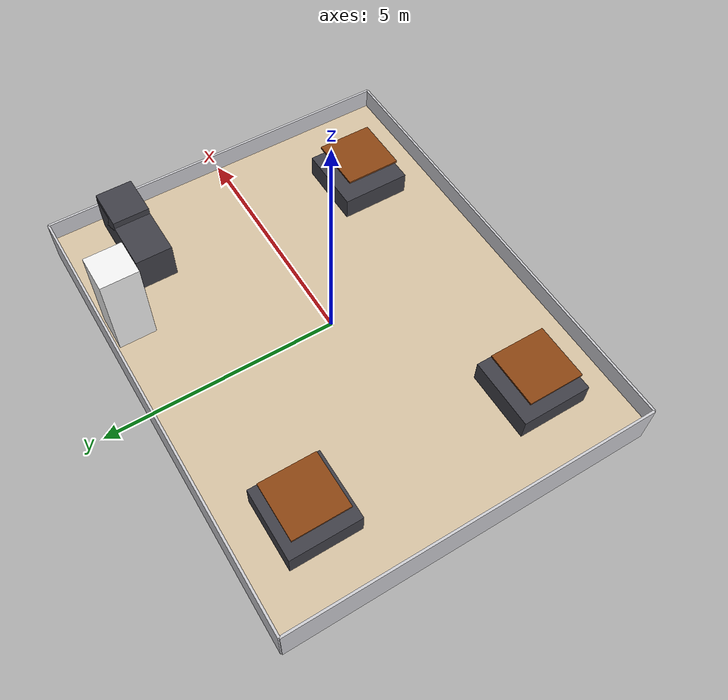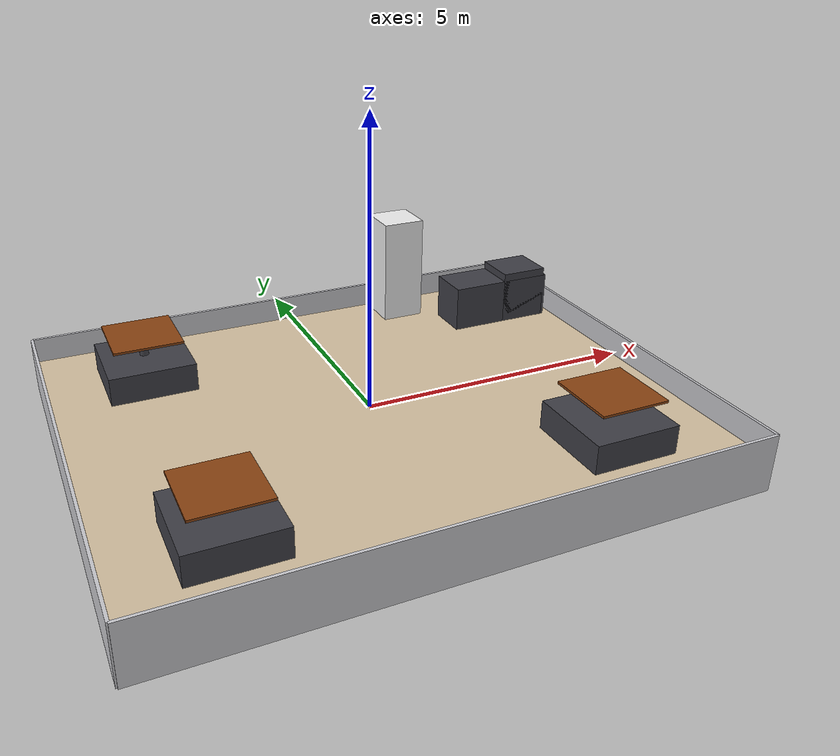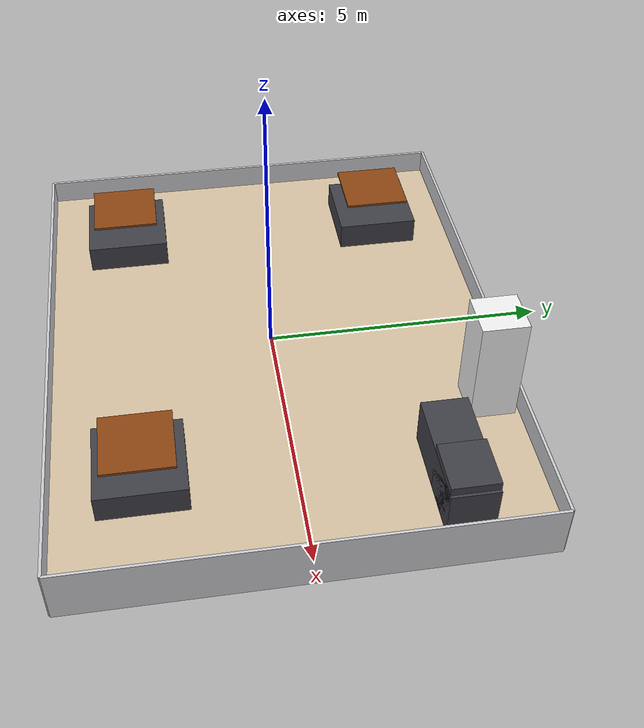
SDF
<sdf version="1.6">
  <world name="restaurant_world">

    <!-- Restaurant model -->
    <include>
      <uri>model://restaurant_env</uri>
    </include>

    <!-- Optional: add light so it’s not dark -->
    <scene>
      <ambient>0.4 0.4 0.4 1</ambient>
      <background>0.7 0.7 0.7 1</background>
      <shadows>1</shadows>
    </scene>

  </world>
</sdf>

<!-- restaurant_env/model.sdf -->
<sdf version="1.6">
  <model name="restaurant_env">
    <static>true</static>
    <link name="restaurant_env">

      <!-- Floor -->
      <collision name="floor_collision">
        <pose>0 0 -0.05 0 0 0</pose>
        <geometry>
          <box>
            <size>10 8 0.1</size>
          </box>
        </geometry>
      </collision>
      <visual name="floor_visual">
        <pose>0 0 -0.05 0 0 0</pose>
        <geometry>
          <box>
            <size>10 8 0.1</size>
          </box>
        </geometry>
        <material>
          <ambient>0.84 0.76 0.64 1</ambient>
          <diffuse>0.84 0.76 0.64 1</diffuse>
        </material>
      </visual>

      <!-- Walls -->
      <collision name="wall_north_collision">
        <pose>0 4 -0.05 0 0 0</pose>
        <geometry>
          <box><size>10 0.05 1</size></box>
        </geometry>
      </collision>
      <visual name="wall_north_visual">
        <pose>0 4 -0.05 0 0 0</pose>
        <geometry>
          <box><size>10 0.05 1</size></box>
        </geometry>
        <material><ambient>0.8 0.8 0.82 1</ambient><diffuse>0.8 0.8 0.82 1</diffuse></material>
      </visual>

      <collision name="wall_south_collision">
        <pose>0 -4 -0.05 0 0 0</pose>
        <geometry>
          <box><size>10 0.05 1</size></box>
        </geometry>
      </collision>
      <visual name="wall_south_visual">
        <pose>0 -4 -0.05 0 0 0</pose>
        <geometry>
          <box><size>10 0.05 1</size></box>
        </geometry>
        <material><ambient>0.8 0.8 0.82 1</ambient><diffuse>0.8 0.8 0.82 1</diffuse></material>
      </visual>

      <collision name="wall_east_collision">
        <pose>5 0 -0.05 0 0 0</pose>
        <geometry>
          <box><size>0.05 8 1</size></box>
        </geometry>
      </collision>
      <visual name="wall_east_visual">
        <pose>5 0 -0.05 0 0 0</pose>
        <geometry>
          <box><size>0.05 8 1</size></box>
        </geometry>
        <material><ambient>0.8 0.8 0.82 1</ambient><diffuse>0.8 0.8 0.82 1</diffuse></material>
      </visual>

      <collision name="wall_west_collision">
        <pose>-5 0 -0.05 0 0 0</pose>
        <geometry>
          <box><size>0.05 8 1</size></box>
        </geometry>
      </collision>
      <visual name="wall_west_visual">
        <pose>-5 0 -0.05 0 0 0</pose>
        <geometry>
          <box><size>0.05 8 1</size></box>
        </geometry>
        <material><ambient>0.8 0.8 0.82 1</ambient><diffuse>0.8 0.8 0.82 1</diffuse></material>
      </visual>

      <!-- Table 1 -->
      <collision name="table1_top_collision">
        <pose>-3.25 -2.5 0.875 0 0 0</pose>
        <geometry>
          <box><size>1.2 1.2 0.04</size></box>
        </geometry>
      </collision>
      <visual name="table1_top_visual">
        <pose>-3.25 -2.5 0.875 0 0 0</pose>
        <geometry>
          <box><size>1.2 1.2 0.04</size></box>
        </geometry>
        <material><ambient>0.55 0.27 0.07 1</ambient><diffuse>0.55 0.27 0.07 1</diffuse></material>
      </visual>

      <!-- Table 1 stem -->
      <collision name="table1_stem_collision">
        <pose>-3.25 -2.5 0.68 0 0 0</pose>
        <geometry>
          <cylinder><radius>0.08</radius><length>0.36</length></cylinder>
        </geometry>
      </collision>
      <visual name="table1_stem_visual">
        <pose>-3.25 -2.5 0.68 0 0 0</pose>
        <geometry>
          <cylinder><radius>0.08</radius><length>0.36</length></cylinder>
        </geometry>
        <material><ambient>0.25 0.25 0.28 1</ambient><diffuse>0.25 0.25 0.28 1</diffuse></material>
      </visual>

      <!-- Hollow cube legs -->
      <collision name="table1_legs_collision">
        <pose>-3.25 -2.5 0 0 0 0</pose>
        <geometry>
          <box><size>1.5 1.5 1</size></box>
        </geometry>
      </collision>
      <visual name="table1_legs_visual">
        <pose>-3.25 -2.5 0 0 0 0</pose>
        <geometry>
          <box><size>1.5 1.5 1</size></box>
        </geometry>
        <material><ambient>0.25 0.25 0.28 1</ambient><diffuse>0.25 0.25 0.28 1</diffuse></material>
      </visual>

      <!-- Table 2 -->
      <collision name="table2_top_collision">
        <pose>3 -2.5 0.875 0 0 0</pose>
        <geometry>
          <box><size>1.2 1.2 0.04</size></box>
        </geometry>
      </collision>
      <visual name="table2_top_visual">
        <pose>3 -2.5 0.875 0 0 0</pose>
        <geometry>
          <box><size>1.2 1.2 0.04</size></box>
        </geometry>
        <material><ambient>0.55 0.27 0.07 1</ambient><diffuse>0.55 0.27 0.07 1</diffuse></material>
      </visual>

      <!-- Table 2 stem -->
      <collision name="table2_stem_collision">
        <pose>3 -2.5 0.68 0 0 0</pose>
        <geometry>
          <cylinder><radius>0.08</radius><length>0.36</length></cylinder>
        </geometry>
      </collision>
      <visual name="table2_stem_visual">
        <pose>3 -2.5 0.68 0 0 0</pose>
        <geometry>
          <cylinder><radius>0.08</radius><length>0.36</length></cylinder>
        </geometry>
        <material><ambient>0.25 0.25 0.28 1</ambient><diffuse>0.25 0.25 0.28 1</diffuse></material>
      </visual>

      <!-- Hollow cube legs -->
      <collision name="table2_legs_collision">
        <pose>3 -2.5 0 0 0 0</pose>
        <geometry>
          <box><size>1.5 1.5 1</size></box>
        </geometry>
      </collision>
      <visual name="table2_legs_visual">
        <pose>3 -2.5 0 0 0 0</pose>
        <geometry>
          <box><size>1.5 1.5 1</size></box>
        </geometry>
        <material><ambient>0.25 0.25 0.28 1</ambient><diffuse>0.25 0.25 0.28 1</diffuse></material>
      </visual>

      <!-- Table 3 -->
      <collision name="table3_top_collision">
        <pose>-3.25 2.5 0.875 0 0 0</pose>
        <geometry>
          <box><size>1.2 1.2 0.04</size></box>
        </geometry>
      </collision>
      <visual name="table3_top_visual">
        <pose>-3.25 2.5 0.875 0 0 0</pose>
        <geometry>
          <box><size>1.2 1.2 0.04</size></box>
        </geometry>
        <material><ambient>0.55 0.27 0.07 1</ambient><diffuse>0.55 0.27 0.07 1</diffuse></material>
      </visual>

      <!-- Table 3 stem -->
      <collision name="table3_stem_collision">
        <pose>-3.25 2.5 0.68 0 0 0</pose>
        <geometry>
          <cylinder><radius>0.08</radius><length>0.36</length></cylinder>
        </geometry>
      </collision>
      <visual name="table3_stem_visual">
        <pose>-3.25 2.5 0.68 0 0 0</pose>
        <geometry>
          <cylinder><radius>0.08</radius><length>0.36</length></cylinder>
        </geometry>
        <material><ambient>0.25 0.25 0.28 1</ambient><diffuse>0.25 0.25 0.28 1</diffuse></material>
      </visual>

      <!-- Hollow cube legs -->
      <collision name="table3_legs_collision">
        <pose>-3.25 2.5 0 0 0 0</pose>
        <geometry>
          <box><size>1.5 1.5 1</size></box>
        </geometry>
      </collision>
      <visual name="table3_legs_visual">
        <pose>-3.25 2.5 0 0 0 0</pose>
        <geometry>
          <box><size>1.5 1.5 1</size></box>
        </geometry>
        <material><ambient>0.25 0.25 0.28 1</ambient><diffuse>0.25 0.25 0.28 1</diffuse></material>
      </visual>

      <!-- Kitchen block -->
      <collision name="kitchen_counter_collision">
        <pose>3.8 2.5 0.4 0 0 0</pose>
        <geometry><box><size>2.0 0.8 0.9</size></box></geometry>
      </collision>
      <visual name="kitchen_counter_visual">
        <pose>3.8 2.5 0.4 0 0 0</pose>
        <geometry><box><size>2.0 0.8 0.9</size></box></geometry>
        <material><ambient>0.25 0.25 0.28 1</ambient><diffuse>0.25 0.25 0.28 1</diffuse></material>
      </visual>

      <collision name="kitchen_cabinet_collision">
        <pose>4.3 2.5 0.5 0 0 0</pose>
        <geometry><box><size>0.9 0.8 1.0</size></box></geometry>
      </collision>
      <visual name="kitchen_cabinet_visual">
        <pose>4.3 2.5 0.5 0 0 0</pose>
        <geometry><box><size>0.9 0.8 1.0</size></box></geometry>
        <material><ambient>0.25 0.25 0.28 1</ambient><diffuse>0.25 0.25 0.28 1</diffuse></material>
      </visual>

      <collision name="kitchen_fridge_collision">
        <pose>2.1 3.5 1.0 0 0 0</pose>
        <geometry><box><size>0.8 0.8 2.0</size></box></geometry>
      </collision>
      <visual name="kitchen_fridge_visual">
        <pose>2.1 3.5 1.0 0 0 0</pose>
        <geometry><box><size>0.8 0.8 2.0</size></box></geometry>
        <material><ambient>0.95 0.95 0.95 1</ambient><diffuse>0.95 0.95 0.95 1</diffuse></material>
      </visual>
    </link>

    <!-- Light -->
    <light type="directional" name="sun_light">
      <pose>0 0 10 0.3 0.5 0</pose>
      <diffuse>1 1 1 1</diffuse>
      <specular>0.1 0.1 0.1 1</specular>
      <cast_shadows>true</cast_shadows>
      <attenuation>
        <range>100</range>
        <constant>0.9</constant>
        <linear>0.01</linear>
        <quadratic>0.001</quadratic>
      </attenuation>
    </light>
  </model>
</sdf>
